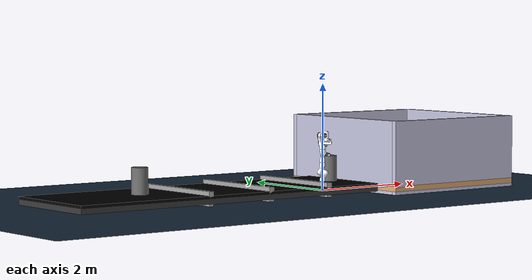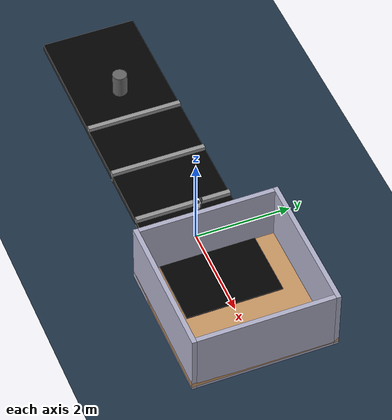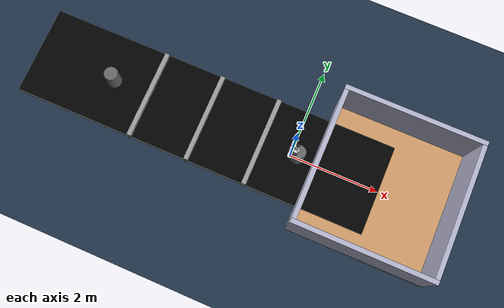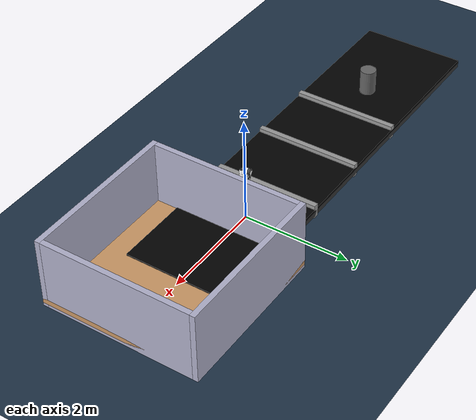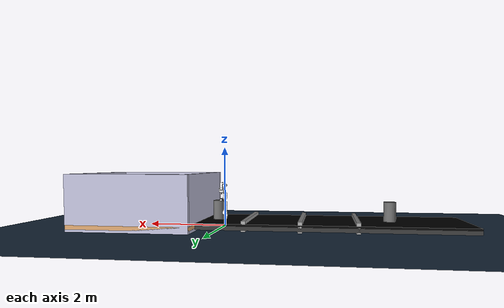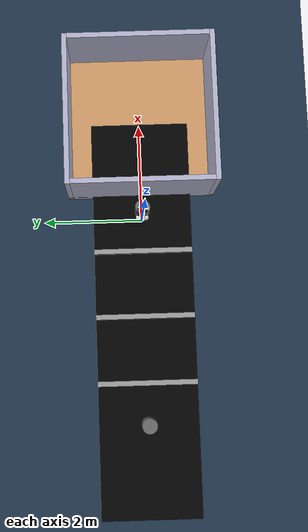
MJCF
<?xml version='1.0' encoding='utf-8'?>
<mujoco model="conveyor_box_system">
  <include file="panda.xml" />
  <compiler angle="radian" coordinate="local" inertiafromgeom="true" />
  <option timestep="0.01" gravity="0 0 -9.81" integrator="RK4" />
  <asset>
    <material name="box_material" rgba="0.8 0.6 0.4 1" />
    <material name="conveyor_material" rgba="0.2 0.2 0.2 1" />
    <material name="conveyor_belt_material" rgba="0.1 0.1 0.1 1" />
    <material name="roller_material" rgba="0.4 0.4 0.4 1" />
    <material name="support_material" rgba="0.6 0.6 0.6 1" />
    <material name="object_material" rgba="0.2 0.8 0.2 1" />
    <material name="ground_material" rgba="0.9 0.9 0.9 1" />
    <material name="wall_material" rgba="0.7 0.7 0.8 1" />
    <texture name="conveyor_texture" type="2d" builtin="checker" rgb1="0.05 0.05 0.05" rgb2="0.15 0.15 0.15" width="512" height="512" />
    <material name="conveyor_tex_material" texture="conveyor_texture" texrepeat="20 4" rgba="0.1 0.1 0.1 1" />
    <texture name="grid" type="2d" builtin="checker" rgb1="0.1 0.2 0.3" rgb2="0.2 0.3 0.4" width="300" height="300" />
    <material name="grid_material" texture="grid" texrepeat="8 8" rgba="0.8 0.8 0.8 1" />
  </asset>
  <worldbody>
    <geom name="ground" type="plane" size="10 10 0.1" material="grid_material" />
    <body name="collection_box" pos="2.0 0.0 0.1">
      <geom name="box_bottom" type="box" size="1.5 1.5 0.05" material="box_material" />
      <geom name="box_wall1" type="box" size="1.5 0.05 0.8" pos="0 1.45 0.45" material="wall_material" />
      <geom name="box_wall2" type="box" size="1.5 0.05 0.8" pos="0 -1.45 0.45" material="wall_material" />
      <geom name="box_wall3" type="box" size="0.05 1.4 0.8" pos="1.45 0 0.45" material="wall_material" />
      <geom name="box_wall4" type="box" size="0.05 1.4 0.8" pos="-1.45 0 0.45" material="wall_material" />
    </body>
    <body name="conveyor_system" pos="-2 0 0.1">
      <geom name="conveyor_support_1" type="box" size="0.05 1.0 0.3" pos="-1.3333333333333333 0 -0.15" material="support_material" />
      <geom name="conveyor_support_2" type="box" size="0.05 1.0 0.3" pos="0 0 -0.15" material="support_material" />
      <geom name="conveyor_support_3" type="box" size="0.05 1.0 0.3" pos="1.3333333333333333 0 -0.15" material="support_material" />
      <geom name="conveyor_base" type="box" size="4.0 1.0 0.05" pos="0 0 -0.025" material="conveyor_material" />
      <body name="belt_surface" pos="0 0 0.05">
        <geom name="belt_surface_geom" type="box" size="4.0 1.0 0.025" material="conveyor_tex_material" friction="0.8 0.005 0.0001" />
        <joint name="belt_joint" type="slide" axis="1 0 0" limited="false" damping="0.1" />
      </body>
      <body name="roller_1" pos="-2.15 0 0.05">
        <geom name="roller_1_geom" type="cylinder" size="0.15 0.5" material="roller_material" />
        <joint name="roller_1_joint" type="hinge" axis="0 1 0" limited="false" damping="0.01" />
      </body>
      <body name="roller_2" pos="2.15 0 0.05">
        <geom name="roller_2_geom" type="cylinder" size="0.15 0.5" material="roller_material" />
        <joint name="roller_2_joint" type="hinge" axis="0 1 0" limited="false" damping="0.01" />
      </body>
    </body>
    <light name="main_light" pos="0 0 10" dir="0 0 -1" diffuse="0.8 0.8 0.8" specular="0.2 0.2 0.2" />
    <light name="side_light" pos="6.0 6.0 6.0" dir="-1 -1 -1" diffuse="0.4 0.4 0.4" />
    <light name="conveyor_light" pos="-2 0 6.0" dir="0 0 -1" diffuse="0.3 0.3 0.3" />
  </worldbody>
  <actuator>
    <motor name="belt_motor" joint="belt_joint" gear="100" ctrllimited="true" ctrlrange="-10 10" />
    <motor name="roller_1_motor" joint="roller_1_joint" gear="20" ctrllimited="true" ctrlrange="-50 50" />
    <motor name="roller_2_motor" joint="roller_2_joint" gear="20" ctrllimited="true" ctrlrange="-50 50" />
  </actuator>
  <sensor>
    <jointpos name="belt_pos" joint="belt_joint" />
    <jointvel name="belt_vel" joint="belt_joint" />
    <jointpos name="roller_1_pos" joint="roller_1_joint" />
    <jointvel name="roller_1_vel" joint="roller_1_joint" />
    <jointpos name="roller_2_pos" joint="roller_2_joint" />
    <jointvel name="roller_2_vel" joint="roller_2_joint" />
  </sensor>
</mujoco>

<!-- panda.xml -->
<mujoco model="panda">
  <compiler angle="radian" meshdir="assets" autolimits="true"/>

  <option integrator="implicitfast"/>

  <default>
    <default class="panda">
      <material specular="0.5" shininess="0.25"/>
      <joint armature="0.1" damping="1" axis="0 0 1" range="-2.8973 2.8973"/>
      <general dyntype="none" biastype="affine" ctrlrange="-2.8973 2.8973" forcerange="-87 87"/>
      <default class="finger">
        <joint axis="0 1 0" type="slide" range="0 0.04"/>
      </default>

      <default class="visual">
        <geom type="mesh" contype="0" conaffinity="0" group="2"/>
      </default>
      <default class="collision">
        <geom type="mesh" group="3"/>
        <default class="fingertip_pad_collision_1">
          <geom type="box" size="0.0085 0.004 0.0085" pos="0 0.0055 0.0445"/>
        </default>
        <default class="fingertip_pad_collision_2">
          <geom type="box" size="0.003 0.002 0.003" pos="0.0055 0.002 0.05"/>
        </default>
        <default class="fingertip_pad_collision_3">
          <geom type="box" size="0.003 0.002 0.003" pos="-0.0055 0.002 0.05"/>
        </default>
        <default class="fingertip_pad_collision_4">
          <geom type="box" size="0.003 0.002 0.0035" pos="0.0055 0.002 0.0395"/>
        </default>
        <default class="fingertip_pad_collision_5">
          <geom type="box" size="0.003 0.002 0.0035" pos="-0.0055 0.002 0.0395"/>
        </default>
      </default>
    </default>
  </default>

  <asset>
    <material class="panda" name="white" rgba="1 1 1 1"/>
    <material class="panda" name="off_white" rgba="0.901961 0.921569 0.929412 1"/>
    <material class="panda" name="black" rgba="0.25 0.25 0.25 1"/>
    <material class="panda" name="green" rgba="0 1 0 1"/>
    <material class="panda" name="light_blue" rgba="0.039216 0.541176 0.780392 1"/>

    <!-- Collision meshes -->
    <mesh name="link0_c" file="link0.stl"/>
    <mesh name="link1_c" file="link1.stl"/>
    <mesh name="link2_c" file="link2.stl"/>
    <mesh name="link3_c" file="link3.stl"/>
    <mesh name="link4_c" file="link4.stl"/>
    <mesh name="link5_c0" file="link5_collision_0.obj"/>
    <mesh name="link5_c1" file="link5_collision_1.obj"/>
    <mesh name="link5_c2" file="link5_collision_2.obj"/>
    <mesh name="link6_c" file="link6.stl"/>
    <mesh name="link7_c" file="link7.stl"/>
    <mesh name="hand_c" file="hand.stl"/>

    <!-- Visual meshes -->
    <mesh file="link0_0.obj"/>
    <mesh file="link0_1.obj"/>
    <mesh file="link0_2.obj"/>
    <mesh file="link0_3.obj"/>
    <mesh file="link0_4.obj"/>
    <mesh file="link0_5.obj"/>
    <mesh file="link0_7.obj"/>
    <mesh file="link0_8.obj"/>
    <mesh file="link0_9.obj"/>
    <mesh file="link0_10.obj"/>
    <mesh file="link0_11.obj"/>
    <mesh file="link1.obj"/>
    <mesh file="link2.obj"/>
    <mesh file="link3_0.obj"/>
    <mesh file="link3_1.obj"/>
    <mesh file="link3_2.obj"/>
    <mesh file="link3_3.obj"/>
    <mesh file="link4_0.obj"/>
    <mesh file="link4_1.obj"/>
    <mesh file="link4_2.obj"/>
    <mesh file="link4_3.obj"/>
    <mesh file="link5_0.obj"/>
    <mesh file="link5_1.obj"/>
    <mesh file="link5_2.obj"/>
    <mesh file="link6_0.obj"/>
    <mesh file="link6_1.obj"/>
    <mesh file="link6_2.obj"/>
    <mesh file="link6_3.obj"/>
    <mesh file="link6_4.obj"/>
    <mesh file="link6_5.obj"/>
    <mesh file="link6_6.obj"/>
    <mesh file="link6_7.obj"/>
    <mesh file="link6_8.obj"/>
    <mesh file="link6_9.obj"/>
    <mesh file="link6_10.obj"/>
    <mesh file="link6_11.obj"/>
    <mesh file="link6_12.obj"/>
    <mesh file="link6_13.obj"/>
    <mesh file="link6_14.obj"/>
    <mesh file="link6_15.obj"/>
    <mesh file="link6_16.obj"/>
    <mesh file="link7_0.obj"/>
    <mesh file="link7_1.obj"/>
    <mesh file="link7_2.obj"/>
    <mesh file="link7_3.obj"/>
    <mesh file="link7_4.obj"/>
    <mesh file="link7_5.obj"/>
    <mesh file="link7_6.obj"/>
    <mesh file="link7_7.obj"/>
    <mesh file="hand_0.obj"/>
    <mesh file="hand_1.obj"/>
    <mesh file="hand_2.obj"/>
    <mesh file="hand_3.obj"/>
    <mesh file="hand_4.obj"/>
    <mesh file="finger_0.obj"/>
    <mesh file="finger_1.obj"/>
  </asset>

  <worldbody>
    <light name="top" pos="0 0 2" mode="trackcom"/>
    <body name="link0" childclass="panda">
      <inertial mass="0.629769" pos="-0.041018 -0.00014 0.049974"
        fullinertia="0.00315 0.00388 0.004285 8.2904e-7 0.00015 8.2299e-6"/>
      <geom mesh="link0_0" material="off_white" class="visual"/>
      <geom mesh="link0_1" material="black" class="visual"/>
      <geom mesh="link0_2" material="off_white" class="visual"/>
      <geom mesh="link0_3" material="black" class="visual"/>
      <geom mesh="link0_4" material="off_white" class="visual"/>
      <geom mesh="link0_5" material="black" class="visual"/>
      <geom mesh="link0_7" material="white" class="visual"/>
      <geom mesh="link0_8" material="white" class="visual"/>
      <geom mesh="link0_9" material="black" class="visual"/>
      <geom mesh="link0_10" material="off_white" class="visual"/>
      <geom mesh="link0_11" material="white" class="visual"/>
      <geom mesh="link0_c" class="collision"/>
      <body name="link1" pos="0 0 0.333">
        <inertial mass="4.970684" pos="0.003875 0.002081 -0.04762"
          fullinertia="0.70337 0.70661 0.0091170 -0.00013900 0.0067720 0.019169"/>
        <joint name="joint1"/>
        <geom material="white" mesh="link1" class="visual"/>
        <geom mesh="link1_c" class="collision"/>
        <body name="link2" quat="1 -1 0 0">
          <inertial mass="0.646926" pos="-0.003141 -0.02872 0.003495"
            fullinertia="0.0079620 2.8110e-2 2.5995e-2 -3.925e-3 1.0254e-2 7.04e-4"/>
          <joint name="joint2" range="-1.7628 1.7628"/>
          <geom material="white" mesh="link2" class="visual"/>
          <geom mesh="link2_c" class="collision"/>
          <body name="link3" pos="0 -0.316 0" quat="1 1 0 0">
            <joint name="joint3"/>
            <inertial mass="3.228604" pos="2.7518e-2 3.9252e-2 -6.6502e-2"
              fullinertia="3.7242e-2 3.6155e-2 1.083e-2 -4.761e-3 -1.1396e-2 -1.2805e-2"/>
            <geom mesh="link3_0" material="white" class="visual"/>
            <geom mesh="link3_1" material="white" class="visual"/>
            <geom mesh="link3_2" material="white" class="visual"/>
            <geom mesh="link3_3" material="black" class="visual"/>
            <geom mesh="link3_c" class="collision"/>
            <body name="link4" pos="0.0825 0 0" quat="1 1 0 0">
              <inertial mass="3.587895" pos="-5.317e-2 1.04419e-1 2.7454e-2"
                fullinertia="2.5853e-2 1.9552e-2 2.8323e-2 7.796e-3 -1.332e-3 8.641e-3"/>
              <joint name="joint4" range="-3.0718 -0.0698"/>
              <geom mesh="link4_0" material="white" class="visual"/>
              <geom mesh="link4_1" material="white" class="visual"/>
              <geom mesh="link4_2" material="black" class="visual"/>
              <geom mesh="link4_3" material="white" class="visual"/>
              <geom mesh="link4_c" class="collision"/>
              <body name="link5" pos="-0.0825 0.384 0" quat="1 -1 0 0">
                <inertial mass="1.225946" pos="-1.1953e-2 4.1065e-2 -3.8437e-2"
                  fullinertia="3.5549e-2 2.9474e-2 8.627e-3 -2.117e-3 -4.037e-3 2.29e-4"/>
                <joint name="joint5"/>
                <geom mesh="link5_0" material="black" class="visual"/>
                <geom mesh="link5_1" material="white" class="visual"/>
                <geom mesh="link5_2" material="white" class="visual"/>
                <geom mesh="link5_c0" class="collision"/>
                <geom mesh="link5_c1" class="collision"/>
                <geom mesh="link5_c2" class="collision"/>
                <body name="link6" quat="1 1 0 0">
                  <inertial mass="1.666555" pos="6.0149e-2 -1.4117e-2 -1.0517e-2"
                    fullinertia="1.964e-3 4.354e-3 5.433e-3 1.09e-4 -1.158e-3 3.41e-4"/>
                  <joint name="joint6" range="-0.0175 3.7525"/>
                  <geom mesh="link6_0" material="off_white" class="visual"/>
                  <geom mesh="link6_1" material="white" class="visual"/>
                  <geom mesh="link6_2" material="black" class="visual"/>
                  <geom mesh="link6_3" material="white" class="visual"/>
                  <geom mesh="link6_4" material="white" class="visual"/>
                  <geom mesh="link6_5" material="white" class="visual"/>
                  <geom mesh="link6_6" material="white" class="visual"/>
                  <geom mesh="link6_7" material="light_blue" class="visual"/>
                  <geom mesh="link6_8" material="light_blue" class="visual"/>
                  <geom mesh="link6_9" material="black" class="visual"/>
                  <geom mesh="link6_10" material="black" class="visual"/>
                  <geom mesh="link6_11" material="white" class="visual"/>
                  <geom mesh="link6_12" material="green" class="visual"/>
                  <geom mesh="link6_13" material="white" class="visual"/>
                  <geom mesh="link6_14" material="black" class="visual"/>
                  <geom mesh="link6_15" material="black" class="visual"/>
                  <geom mesh="link6_16" material="white" class="visual"/>
                  <geom mesh="link6_c" class="collision"/>
                  <body name="link7" pos="0.088 0 0" quat="1 1 0 0">
                    <inertial mass="7.35522e-01" pos="1.0517e-2 -4.252e-3 6.1597e-2"
                      fullinertia="1.2516e-2 1.0027e-2 4.815e-3 -4.28e-4 -1.196e-3 -7.41e-4"/>
                    <joint name="joint7"/>
                    <geom mesh="link7_0" material="white" class="visual"/>
                    <geom mesh="link7_1" material="black" class="visual"/>
                    <geom mesh="link7_2" material="black" class="visual"/>
                    <geom mesh="link7_3" material="black" class="visual"/>
                    <geom mesh="link7_4" material="black" class="visual"/>
                    <geom mesh="link7_5" material="black" class="visual"/>
                    <geom mesh="link7_6" material="black" class="visual"/>
                    <geom mesh="link7_7" material="white" class="visual"/>
                    <geom mesh="link7_c" class="collision"/>
                    <body name="hand" pos="0 0 0.107" quat="0.9238795 0 0 -0.3826834">
                      <inertial mass="0.73" pos="-0.01 0 0.03" diaginertia="0.001 0.0025 0.0017"/>
                      <geom mesh="hand_0" material="off_white" class="visual"/>
                      <geom mesh="hand_1" material="black" class="visual"/>
                      <geom mesh="hand_2" material="black" class="visual"/>
                      <geom mesh="hand_3" material="white" class="visual"/>
                      <geom mesh="hand_4" material="off_white" class="visual"/>
                      <geom mesh="hand_c" class="collision"/>
                      <body name="left_finger" pos="0 0 0.0584">
                        <inertial mass="0.015" pos="0 0 0" diaginertia="2.375e-6 2.375e-6 7.5e-7"/>
                        <joint name="finger_joint1" class="finger"/>
                        <geom mesh="finger_0" material="off_white" class="visual"/>
                        <geom mesh="finger_1" material="black" class="visual"/>
                        <geom mesh="finger_0" class="collision"/>
                        <geom class="fingertip_pad_collision_1"/>
                        <geom class="fingertip_pad_collision_2"/>
                        <geom class="fingertip_pad_collision_3"/>
                        <geom class="fingertip_pad_collision_4"/>
                        <geom class="fingertip_pad_collision_5"/>
                      </body>
                      <body name="right_finger" pos="0 0 0.0584" quat="0 0 0 1">
                        <inertial mass="0.015" pos="0 0 0" diaginertia="2.375e-6 2.375e-6 7.5e-7"/>
                        <joint name="finger_joint2" class="finger"/>
                        <geom mesh="finger_0" material="off_white" class="visual"/>
                        <geom mesh="finger_1" material="black" class="visual"/>
                        <geom mesh="finger_0" class="collision"/>
                        <geom class="fingertip_pad_collision_1"/>
                        <geom class="fingertip_pad_collision_2"/>
                        <geom class="fingertip_pad_collision_3"/>
                        <geom class="fingertip_pad_collision_4"/>
                        <geom class="fingertip_pad_collision_5"/>
                      </body>
                    </body>
                  </body>
                </body>
              </body>
            </body>
          </body>
        </body>
      </body>
    </body>
  </worldbody>

  <tendon>
    <fixed name="split">
      <joint joint="finger_joint1" coef="0.5"/>
      <joint joint="finger_joint2" coef="0.5"/>
    </fixed>
  </tendon>

  <equality>
    <joint joint1="finger_joint1" joint2="finger_joint2" solimp="0.95 0.99 0.001" solref="0.005 1"/>
  </equality>

  <actuator>
    <general class="panda" name="actuator1" joint="joint1" gainprm="4500" biasprm="0 -4500 -450"/>
    <general class="panda" name="actuator2" joint="joint2" gainprm="4500" biasprm="0 -4500 -450"
      ctrlrange="-1.7628 1.7628"/>
    <general class="panda" name="actuator3" joint="joint3" gainprm="3500" biasprm="0 -3500 -350"/>
    <general class="panda" name="actuator4" joint="joint4" gainprm="3500" biasprm="0 -3500 -350"
      ctrlrange="-3.0718 -0.0698"/>
    <general class="panda" name="actuator5" joint="joint5" gainprm="2000" biasprm="0 -2000 -200" forcerange="-12 12"/>
    <general class="panda" name="actuator6" joint="joint6" gainprm="2000" biasprm="0 -2000 -200" forcerange="-12 12"
      ctrlrange="-0.0175 3.7525"/>
    <general class="panda" name="actuator7" joint="joint7" gainprm="2000" biasprm="0 -2000 -200" forcerange="-12 12"/>
    <!-- Remap original ctrlrange (0, 0.04) to (0, 255): 0.04 * 100 / 255 = 0.01568627451 -->
    <general class="panda" name="actuator8" tendon="split" forcerange="-100 100" ctrlrange="0 255"
      gainprm="0.01568627451 0 0" biasprm="0 -100 -10"/>
  </actuator>

  <contact>
    <exclude body1="link0" body2="link1"/>
  </contact>
</mujoco>
